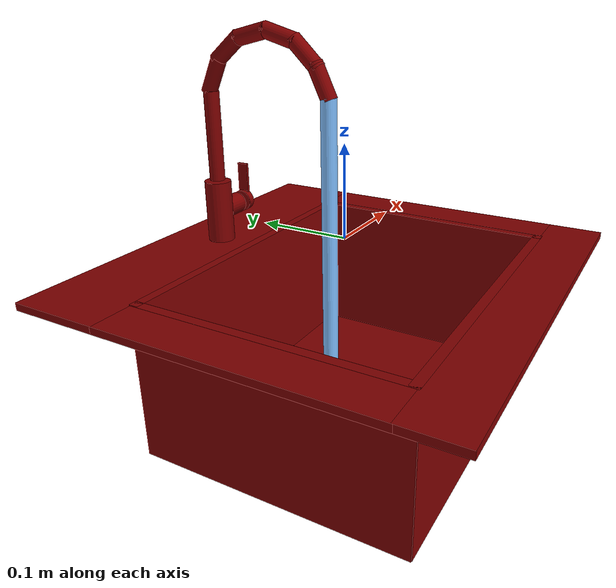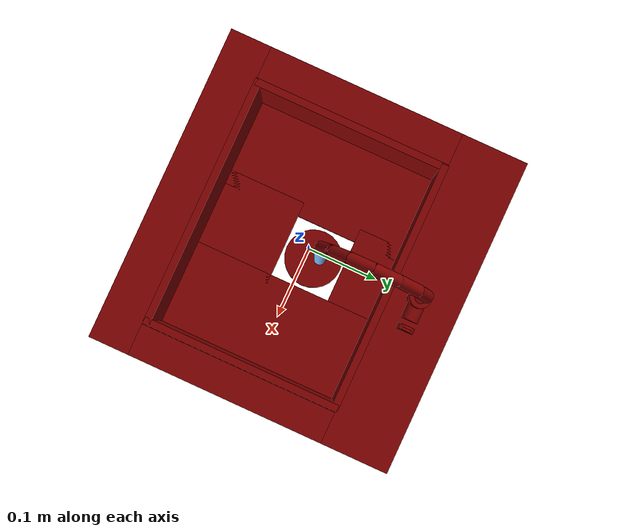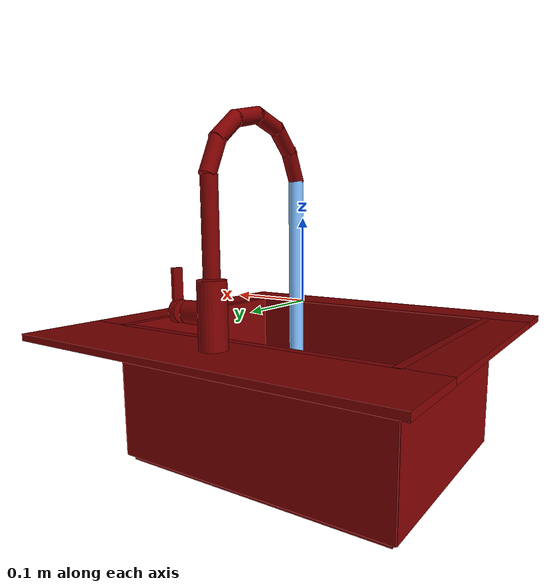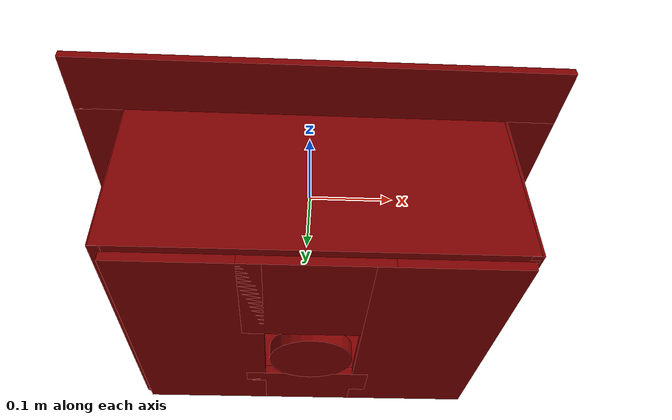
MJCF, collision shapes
<mujoco model="model">
  <compiler angle="radian"/>
  <asset>
    <mesh file="visuals/handle.obj" name="handle_vis"/>
    <mesh file="visuals/Body001.obj" name="Body001_vis"/>
    <mesh file="visuals/Funnel001.obj" name="Funnel001_vis"/>
    <mesh file="visuals/spout.obj" name="spout_vis"/>
    <texture file="visuals/T_BC001.png" name="Body001_material" type="2d"/>
    <material name="Body001_material" rgba="1 1 1 1.0" texture="Body001_material" shininess="0.4472135901451111" specular="0.3103448502657381"/>
    <texture file="visuals/T_BC001.png" name="handle_material" type="2d"/>
    <material name="handle_material" rgba="1 1 1 1.0" texture="handle_material" shininess="0.4472135901451111" specular="0.3103448502657381"/>
    <texture file="visuals/T_BC001.png" name="Funnel001_material" type="2d"/>
    <material name="Funnel001_material" rgba="1 1 1 1.0" texture="Funnel001_material" shininess="0.4472135901451111" specular="0.3103448502657381"/>
    <texture file="visuals/T_BC001.png" name="spout_material" type="2d"/>
    <material name="spout_material" rgba="1 1 1 1.0" texture="spout_material" shininess="0.4472135901451111" specular="0.3103448502657381"/>
  </asset>
  <default>
    <default class="visual">
      <geom conaffinity="0" contype="0" group="1" type="mesh"/>
    </default>
    <default class="collision">
      <geom group="0" rgba="0.5 0 0 0.5"/>
    </default>
    <default class="spawn">
      <geom group="0" rgba="1 1 1 0.5" contype="0" conaffinity="0"/>
      <site group="0" rgba="1 1 1 0.5"/>
    </default>
    <default class="region">
      <geom group="1" conaffinity="0" contype="0" rgba="0 1 0 0"/>
    </default>
  </default>
  <worldbody>
    <body>
      <body name="object">
        <geom mesh="Body001_vis" type="mesh" solimp="0.998 0.998 0.001" solref="0.001 1" density="100" friction="0.95 0.3 0.1" class="visual" material="Body001_material"/>
        <geom class="collision" type="box" pos="-0.000000 -0.193838 -0.032734" size="0.23323486745357513 0.030245788395404816 0.004003007430583239" quat="1.0 0.0 0.0 0.0"/>
        <geom class="collision" type="box" pos="-0.181001 -0.019430 -0.113113" size="0.005237760953605175 0.14569877088069916 0.08438261598348618" quat="1.0 0.0 0.0 0.0"/>
        <geom class="collision" type="box" pos="-0.000260 0.085848 -0.201990" size="0.06616470962762833 0.03285209462046623 0.0043617840856313705" quat="1.0 0.0 0.0 0.0"/>
        <geom class="collision" type="box" pos="0.210018 -0.019430 -0.032734" size="0.023217124864459038 0.14569877088069916 0.004003007430583239" quat="1.0 0.0 0.0 0.0"/>
        <geom class="collision" type="box" pos="-0.209600 -0.019430 -0.032734" size="0.023635167628526688 0.14569877088069916 0.004003007430583239" quat="1.0 0.0 0.0 0.0"/>
        <geom class="collision" type="box" pos="0.181199 -0.019430 -0.113113" size="0.005237760953605175 0.14569877088069916 0.08438261598348618" quat="1.0 0.0 0.0 0.0"/>
        <geom class="collision" type="box" pos="-0.000534 0.122550 -0.113113" size="0.0052377632819116116 0.18440647423267365 0.08438261598348618" quat="0.7071068286895752 0.0 -0.0 -0.7071067690849304"/>
        <geom class="collision" type="box" pos="-0.000534 -0.160400 -0.113113" size="0.0052377632819116116 0.18440647423267365 0.08438261598348618" quat="0.7071068286895752 0.0 -0.0 -0.7071067690849304"/>
        <geom class="collision" type="box" pos="-0.000000 0.174535 -0.032734" size="0.23323486745357513 0.04954919591546059 0.004003007430583239" quat="1.0 0.0 0.0 0.0"/>
        <geom class="collision" type="box" pos="-0.112056 -0.019433 -0.201990" size="0.06616470962762833 0.13813363015651703 0.0043617840856313705" quat="1.0 0.0 0.0 0.0"/>
        <geom class="collision" type="box" pos="-0.001101 -0.097817 -0.201990" size="0.06616470962762833 0.059750378131866455 0.0043617840856313705" quat="1.0 0.0 0.0 0.0"/>
        <geom class="collision" type="box" pos="0.114898 -0.019433 -0.201990" size="0.06616470962762833 0.13813363015651703 0.0043617840856313705" quat="1.0 0.0 0.0 0.0"/>
        <geom class="collision" type="cylinder" pos="0.015625 0.163375 0.006440" size="0.012047462165355682 0.016011804342269897" quat="0.7071068286895752 -0.0 0.7071067690849304 0.0"/>
        <geom class="collision" type="cylinder" pos="-0.001774 0.163515 0.005467" size="0.014957708306610584 0.03546305000782013" quat="1.0 0.0 0.0 0.0"/>
        <body name="handle">
          <joint axis="1.0 0.0 0.0" pos="0.039186 0.163405 0.006452" limited="true" name="handle_joint_hinge_0" type="hinge" range="-0.7853981633974483 0.7853981633974483" damping="1" frictionloss="1" armature=".01" stiffness="0.05"/>
          <joint axis="0.0 1.0 0.0" pos="0.039186 0.163405 0.006452" limited="true" name="handle_joint_hinge_1" type="hinge" range="0.0 0.17453292519943295" damping="1" frictionloss="1" armature=".01" stiffness="0.05"/>
          <geom mesh="handle_vis" type="mesh" solimp="0.998 0.998 0.001" solref="0.001 1" density="100" friction="0.95 0.3 0.1" class="visual" material="handle_material"/>
          <geom class="collision" type="cylinder" pos="0.043496 0.163375 0.006440" size="0.012047463096678257 0.003965734038501978" quat="0.7071068286895752 -0.0 0.7071067690849304 0.0"/>
          <geom class="collision" type="box" pos="0.045775 0.163385 0.033569" size="0.0017400255892425776 0.006331619340926409 0.017118733376264572" quat="1.0 0.0 0.0 0.0"/>
        </body>
        <body name="Funnel001">
          <joint axis="0.0 0.0 1.0" pos="0.000024 0.008314 -0.204566" limited="true" name="Funnel001_joint" range="0.0 0.1" type="slide" damping="1" frictionloss="1" armature=".01" stiffness="0.05"/>
          <geom mesh="Funnel001_vis" type="mesh" solimp="0.998 0.998 0.001" solref="0.001 1" density="100" friction="0.95 0.3 0.1" class="visual" material="Funnel001_material"/>
          <geom class="collision" type="cylinder" pos="0.001249 0.008085 -0.203634" size="0.042485371232032776 0.007583811413496733" quat="1.0 0.0 0.0 0.0"/>
        </body>
        <body name="spout">
          <joint axis="0.0 0.0 1.0" pos="-0.001868 0.163513 0.125429" limited="true" name="spout_joint" range="-1.0471975511965976 1.0471975511965976" type="hinge" damping="1" frictionloss="1" armature=".01" stiffness="0.05"/>
          <site type="cylinder" rgba="0.5 0.75 1 1" size="0.008481129072606564 0.17077569663524628" pos="-0.001821 0.016904 -0.026902" name="water"/>
          <geom mesh="spout_vis" type="mesh" solimp="0.998 0.998 0.001" solref="0.001 1" density="100" friction="0.95 0.3 0.1" class="visual" material="spout_material"/>
          <geom class="collision" type="cylinder" pos="-0.001774 0.163515 0.091640" size="0.008534016087651253 0.04920020326972008" quat="1.0 0.0 0.0 0.0"/>
          <geom class="collision" type="cylinder" pos="-0.001774 0.105705 0.200636" size="0.008534016087651253 0.019626770168542862" quat="0.7871049046516418 0.6168191432952881 3.401772989934936e-17 -1.815173904300857e-17"/>
          <geom class="collision" type="cylinder" pos="-0.001774 0.157691 0.157279" size="0.008534016087651253 0.019626770168542862" quat="0.9762960076332092 0.2164396047592163 0.0 0.0"/>
          <geom class="collision" type="cylinder" pos="-0.001774 0.137051 0.185324" size="0.008534016087651253 0.019626766443252563" quat="0.9039337038993835 0.4276726543903351 3.718751909387706e-17 -1.018727187407237e-17"/>
          <geom class="collision" type="cylinder" pos="-0.001774 0.071849 0.200202" size="0.008534016087651253 0.019626768305897713" quat="0.6048628091812134 0.7963297367095947 2.8299562673668287e-17 -2.6188285076161415e-17"/>
          <geom class="collision" type="cylinder" pos="-0.001774 0.042552 0.183928" size="0.008534016087651253 0.019626768305897713" quat="0.3931657671928406 0.9194676280021667 2.1085503830272843e-17 -3.228147117615565e-17"/>
          <geom class="collision" type="cylinder" pos="-0.001774 0.024224 0.158601" size="0.008534016087651253 0.019626768305897713" quat="0.21976730227470398 0.9755523204803467 1.4876749018176372e-17 -3.5572098223287554e-17"/>
        </body>
        <geom class="region" name="reg_main" type="box" pos="0.0 0.0 -0.1199745" size="0.233235 0.224084 0.09124349999999999"/>
        <geom class="region" name="reg_basin" type="box" pos="0.00026299999999999935 -0.021127000000000007 -0.1127575" size="0.177276 0.136102 0.0782295"/>
      </body>
    </body>
  </worldbody>
  <actuator>
    <motor name="handle_joint_hinge_0_actuator" joint="handle_joint_hinge_0" gear="10"/>
    <motor name="handle_joint_hinge_1_actuator" joint="handle_joint_hinge_1" gear="10"/>
    <motor name="Funnel001_joint_actuator" joint="Funnel001_joint" gear="10"/>
    <motor name="spout_joint_actuator" joint="spout_joint" gear="10"/>
  </actuator>
</mujoco>
